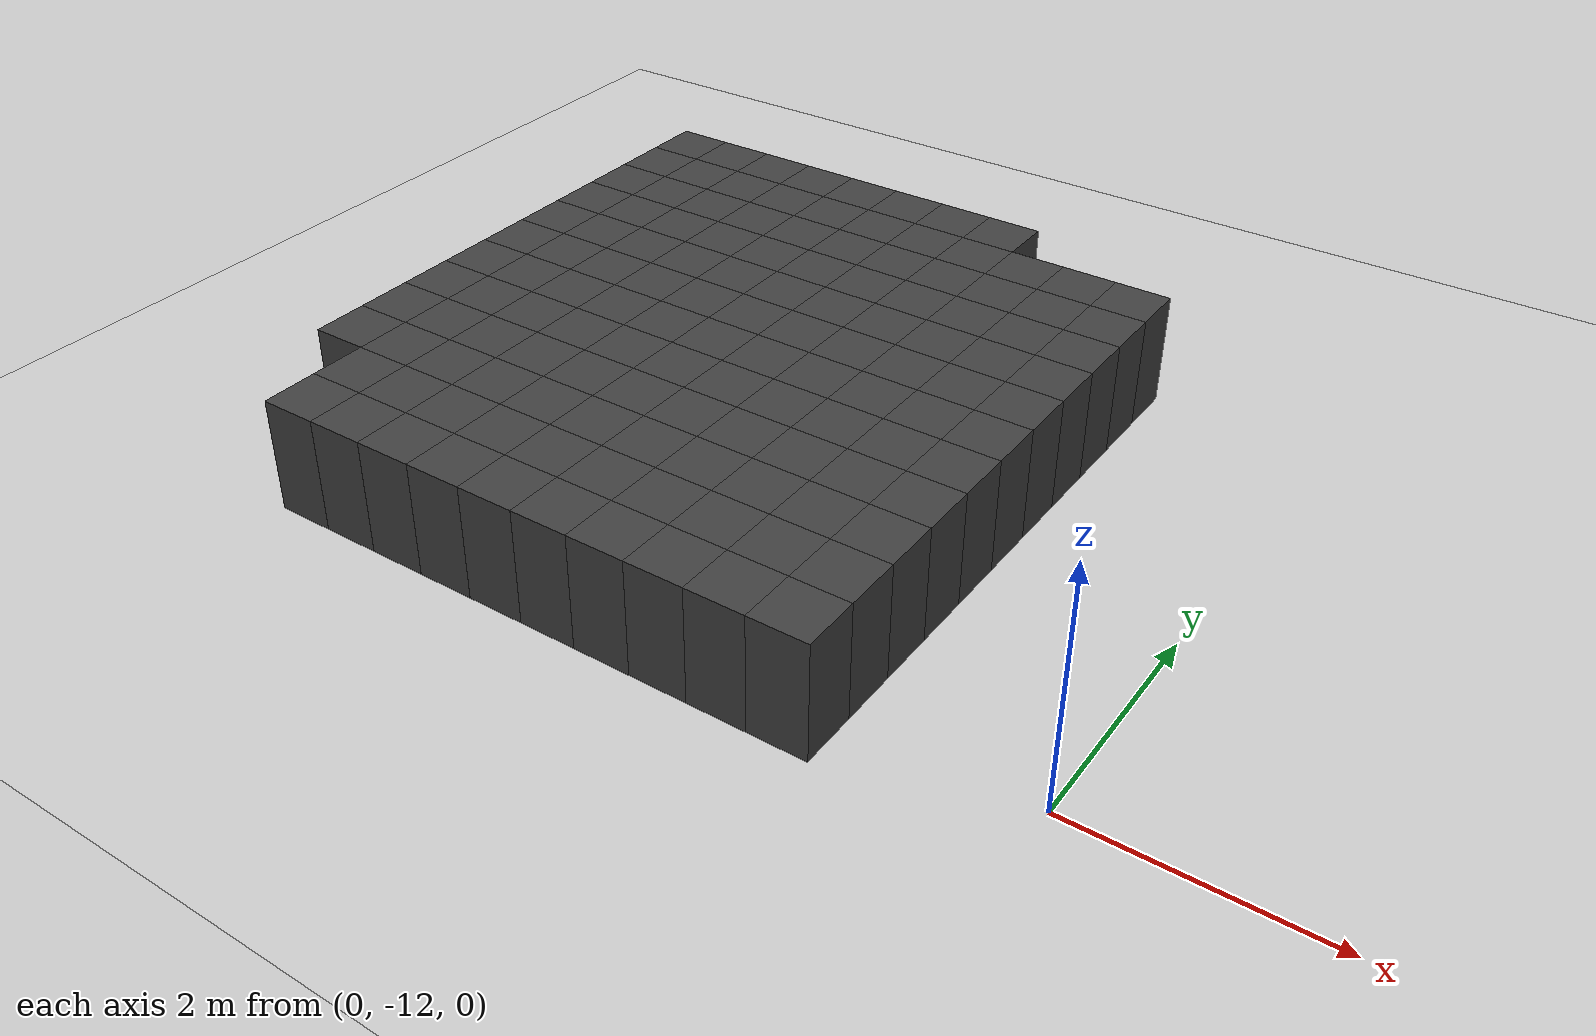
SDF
<sdf version="1.7">
 <world name="map_10777">
  <model name="ground_plane">
   <static>true</static>
   <link name="link">
    <collision name="collision">
     <geometry><plane><normal>0 0 1</normal><size>200 200</size></plane></geometry>
    </collision>
    <visual name="visual">
     <geometry><plane><normal>0 0 1</normal><size>200 200</size></plane></geometry>
     <material><ambient>0.8 0.8 0.8 1</ambient><diffuse>0.8 0.8 0.8 1</diffuse></material>
    </visual>
   </link>
  </model>
  <model name="maze_environment">
   <static>true</static>
   <link name="wall_1661">
    <pose>-6.750 -6.750 0.500 0 0 0</pose>
    <collision name="col"><geometry><box><size>0.5 0.5 1.0</size></box></geometry></collision>
    <visual name="vis">
     <geometry><box><size>0.5 0.5 1.0</size></box></geometry>
     <material><ambient>0.15 0.15 0.15 1</ambient><diffuse>0.25 0.25 0.25 1</diffuse></material>
    </visual>
   </link>
   <link name="wall_1662">
    <pose>-6.250 -6.750 0.500 0 0 0</pose>
    <collision name="col"><geometry><box><size>0.5 0.5 1.0</size></box></geometry></collision>
    <visual name="vis">
     <geometry><box><size>0.5 0.5 1.0</size></box></geometry>
     <material><ambient>0.15 0.15 0.15 1</ambient><diffuse>0.25 0.25 0.25 1</diffuse></material>
    </visual>
   </link>
   <link name="wall_1663">
    <pose>-5.750 -6.750 0.500 0 0 0</pose>
    <collision name="col"><geometry><box><size>0.5 0.5 1.0</size></box></geometry></collision>
    <visual name="vis">
     <geometry><box><size>0.5 0.5 1.0</size></box></geometry>
     <material><ambient>0.15 0.15 0.15 1</ambient><diffuse>0.25 0.25 0.25 1</diffuse></material>
    </visual>
   </link>
   <link name="wall_1664">
    <pose>-5.250 -6.750 0.500 0 0 0</pose>
    <collision name="col"><geometry><box><size>0.5 0.5 1.0</size></box></geometry></collision>
    <visual name="vis">
     <geometry><box><size>0.5 0.5 1.0</size></box></geometry>
     <material><ambient>0.15 0.15 0.15 1</ambient><diffuse>0.25 0.25 0.25 1</diffuse></material>
    </visual>
   </link>
   <link name="wall_1665">
    <pose>-4.750 -6.750 0.500 0 0 0</pose>
    <collision name="col"><geometry><box><size>0.5 0.5 1.0</size></box></geometry></collision>
    <visual name="vis">
     <geometry><box><size>0.5 0.5 1.0</size></box></geometry>
     <material><ambient>0.15 0.15 0.15 1</ambient><diffuse>0.25 0.25 0.25 1</diffuse></material>
    </visual>
   </link>
   <link name="wall_1666">
    <pose>-4.250 -6.750 0.500 0 0 0</pose>
    <collision name="col"><geometry><box><size>0.5 0.5 1.0</size></box></geometry></collision>
    <visual name="vis">
     <geometry><box><size>0.5 0.5 1.0</size></box></geometry>
     <material><ambient>0.15 0.15 0.15 1</ambient><diffuse>0.25 0.25 0.25 1</diffuse></material>
    </visual>
   </link>
   <link name="wall_1667">
    <pose>-3.750 -6.750 0.500 0 0 0</pose>
    <collision name="col"><geometry><box><size>0.5 0.5 1.0</size></box></geometry></collision>
    <visual name="vis">
     <geometry><box><size>0.5 0.5 1.0</size></box></geometry>
     <material><ambient>0.15 0.15 0.15 1</ambient><diffuse>0.25 0.25 0.25 1</diffuse></material>
    </visual>
   </link>
   <link name="wall_1668">
    <pose>-3.250 -6.750 0.500 0 0 0</pose>
    <collision name="col"><geometry><box><size>0.5 0.5 1.0</size></box></geometry></collision>
    <visual name="vis">
     <geometry><box><size>0.5 0.5 1.0</size></box></geometry>
     <material><ambient>0.15 0.15 0.15 1</ambient><diffuse>0.25 0.25 0.25 1</diffuse></material>
    </visual>
   </link>
   <link name="wall_1700">
    <pose>-6.750 -7.250 0.500 0 0 0</pose>
    <collision name="col"><geometry><box><size>0.5 0.5 1.0</size></box></geometry></collision>
    <visual name="vis">
     <geometry><box><size>0.5 0.5 1.0</size></box></geometry>
     <material><ambient>0.15 0.15 0.15 1</ambient><diffuse>0.25 0.25 0.25 1</diffuse></material>
    </visual>
   </link>
   <link name="wall_1701">
    <pose>-6.250 -7.250 0.500 0 0 0</pose>
    <collision name="col"><geometry><box><size>0.5 0.5 1.0</size></box></geometry></collision>
    <visual name="vis">
     <geometry><box><size>0.5 0.5 1.0</size></box></geometry>
     <material><ambient>0.15 0.15 0.15 1</ambient><diffuse>0.25 0.25 0.25 1</diffuse></material>
    </visual>
   </link>
   <link name="wall_1702">
    <pose>-5.750 -7.250 0.500 0 0 0</pose>
    <collision name="col"><geometry><box><size>0.5 0.5 1.0</size></box></geometry></collision>
    <visual name="vis">
     <geometry><box><size>0.5 0.5 1.0</size></box></geometry>
     <material><ambient>0.15 0.15 0.15 1</ambient><diffuse>0.25 0.25 0.25 1</diffuse></material>
    </visual>
   </link>
   <link name="wall_1703">
    <pose>-5.250 -7.250 0.500 0 0 0</pose>
    <collision name="col"><geometry><box><size>0.5 0.5 1.0</size></box></geometry></collision>
    <visual name="vis">
     <geometry><box><size>0.5 0.5 1.0</size></box></geometry>
     <material><ambient>0.15 0.15 0.15 1</ambient><diffuse>0.25 0.25 0.25 1</diffuse></material>
    </visual>
   </link>
   <link name="wall_1704">
    <pose>-4.750 -7.250 0.500 0 0 0</pose>
    <collision name="col"><geometry><box><size>0.5 0.5 1.0</size></box></geometry></collision>
    <visual name="vis">
     <geometry><box><size>0.5 0.5 1.0</size></box></geometry>
     <material><ambient>0.15 0.15 0.15 1</ambient><diffuse>0.25 0.25 0.25 1</diffuse></material>
    </visual>
   </link>
   <link name="wall_1705">
    <pose>-4.250 -7.250 0.500 0 0 0</pose>
    <collision name="col"><geometry><box><size>0.5 0.5 1.0</size></box></geometry></collision>
    <visual name="vis">
     <geometry><box><size>0.5 0.5 1.0</size></box></geometry>
     <material><ambient>0.15 0.15 0.15 1</ambient><diffuse>0.25 0.25 0.25 1</diffuse></material>
    </visual>
   </link>
   <link name="wall_1706">
    <pose>-3.750 -7.250 0.500 0 0 0</pose>
    <collision name="col"><geometry><box><size>0.5 0.5 1.0</size></box></geometry></collision>
    <visual name="vis">
     <geometry><box><size>0.5 0.5 1.0</size></box></geometry>
     <material><ambient>0.15 0.15 0.15 1</ambient><diffuse>0.25 0.25 0.25 1</diffuse></material>
    </visual>
   </link>
   <link name="wall_1707">
    <pose>-3.250 -7.250 0.500 0 0 0</pose>
    <collision name="col"><geometry><box><size>0.5 0.5 1.0</size></box></geometry></collision>
    <visual name="vis">
     <geometry><box><size>0.5 0.5 1.0</size></box></geometry>
     <material><ambient>0.15 0.15 0.15 1</ambient><diffuse>0.25 0.25 0.25 1</diffuse></material>
    </visual>
   </link>
   <link name="wall_1708">
    <pose>-2.750 -7.250 0.500 0 0 0</pose>
    <collision name="col"><geometry><box><size>0.5 0.5 1.0</size></box></geometry></collision>
    <visual name="vis">
     <geometry><box><size>0.5 0.5 1.0</size></box></geometry>
     <material><ambient>0.15 0.15 0.15 1</ambient><diffuse>0.25 0.25 0.25 1</diffuse></material>
    </visual>
   </link>
   <link name="wall_1709">
    <pose>-2.250 -7.250 0.500 0 0 0</pose>
    <collision name="col"><geometry><box><size>0.5 0.5 1.0</size></box></geometry></collision>
    <visual name="vis">
     <geometry><box><size>0.5 0.5 1.0</size></box></geometry>
     <material><ambient>0.15 0.15 0.15 1</ambient><diffuse>0.25 0.25 0.25 1</diffuse></material>
    </visual>
   </link>
   <link name="wall_1710">
    <pose>-1.750 -7.250 0.500 0 0 0</pose>
    <collision name="col"><geometry><box><size>0.5 0.5 1.0</size></box></geometry></collision>
    <visual name="vis">
     <geometry><box><size>0.5 0.5 1.0</size></box></geometry>
     <material><ambient>0.15 0.15 0.15 1</ambient><diffuse>0.25 0.25 0.25 1</diffuse></material>
    </visual>
   </link>
   <link name="wall_1743">
    <pose>-6.750 -7.750 0.500 0 0 0</pose>
    <collision name="col"><geometry><box><size>0.5 0.5 1.0</size></box></geometry></collision>
    <visual name="vis">
     <geometry><box><size>0.5 0.5 1.0</size></box></geometry>
     <material><ambient>0.15 0.15 0.15 1</ambient><diffuse>0.25 0.25 0.25 1</diffuse></material>
    </visual>
   </link>
   <link name="wall_1744">
    <pose>-6.250 -7.750 0.500 0 0 0</pose>
    <collision name="col"><geometry><box><size>0.5 0.5 1.0</size></box></geometry></collision>
    <visual name="vis">
     <geometry><box><size>0.5 0.5 1.0</size></box></geometry>
     <material><ambient>0.15 0.15 0.15 1</ambient><diffuse>0.25 0.25 0.25 1</diffuse></material>
    </visual>
   </link>
   <link name="wall_1745">
    <pose>-5.750 -7.750 0.500 0 0 0</pose>
    <collision name="col"><geometry><box><size>0.5 0.5 1.0</size></box></geometry></collision>
    <visual name="vis">
     <geometry><box><size>0.5 0.5 1.0</size></box></geometry>
     <material><ambient>0.15 0.15 0.15 1</ambient><diffuse>0.25 0.25 0.25 1</diffuse></material>
    </visual>
   </link>
   <link name="wall_1746">
    <pose>-5.250 -7.750 0.500 0 0 0</pose>
    <collision name="col"><geometry><box><size>0.5 0.5 1.0</size></box></geometry></collision>
    <visual name="vis">
     <geometry><box><size>0.5 0.5 1.0</size></box></geometry>
     <material><ambient>0.15 0.15 0.15 1</ambient><diffuse>0.25 0.25 0.25 1</diffuse></material>
    </visual>
   </link>
   <link name="wall_1747">
    <pose>-4.750 -7.750 0.500 0 0 0</pose>
    <collision name="col"><geometry><box><size>0.5 0.5 1.0</size></box></geometry></collision>
    <visual name="vis">
     <geometry><box><size>0.5 0.5 1.0</size></box></geometry>
     <material><ambient>0.15 0.15 0.15 1</ambient><diffuse>0.25 0.25 0.25 1</diffuse></material>
    </visual>
   </link>
   <link name="wall_1748">
    <pose>-4.250 -7.750 0.500 0 0 0</pose>
    <collision name="col"><geometry><box><size>0.5 0.5 1.0</size></box></geometry></collision>
    <visual name="vis">
     <geometry><box><size>0.5 0.5 1.0</size></box></geometry>
     <material><ambient>0.15 0.15 0.15 1</ambient><diffuse>0.25 0.25 0.25 1</diffuse></material>
    </visual>
   </link>
   <link name="wall_1749">
    <pose>-3.750 -7.750 0.500 0 0 0</pose>
    <collision name="col"><geometry><box><size>0.5 0.5 1.0</size></box></geometry></collision>
    <visual name="vis">
     <geometry><box><size>0.5 0.5 1.0</size></box></geometry>
     <material><ambient>0.15 0.15 0.15 1</ambient><diffuse>0.25 0.25 0.25 1</diffuse></material>
    </visual>
   </link>
   <link name="wall_1750">
    <pose>-3.250 -7.750 0.500 0 0 0</pose>
    <collision name="col"><geometry><box><size>0.5 0.5 1.0</size></box></geometry></collision>
    <visual name="vis">
     <geometry><box><size>0.5 0.5 1.0</size></box></geometry>
     <material><ambient>0.15 0.15 0.15 1</ambient><diffuse>0.25 0.25 0.25 1</diffuse></material>
    </visual>
   </link>
   <link name="wall_1751">
    <pose>-2.750 -7.750 0.500 0 0 0</pose>
    <collision name="col"><geometry><box><size>0.5 0.5 1.0</size></box></geometry></collision>
    <visual name="vis">
     <geometry><box><size>0.5 0.5 1.0</size></box></geometry>
     <material><ambient>0.15 0.15 0.15 1</ambient><diffuse>0.25 0.25 0.25 1</diffuse></material>
    </visual>
   </link>
   <link name="wall_1752">
    <pose>-2.250 -7.750 0.500 0 0 0</pose>
    <collision name="col"><geometry><box><size>0.5 0.5 1.0</size></box></geometry></collision>
    <visual name="vis">
     <geometry><box><size>0.5 0.5 1.0</size></box></geometry>
     <material><ambient>0.15 0.15 0.15 1</ambient><diffuse>0.25 0.25 0.25 1</diffuse></material>
    </visual>
   </link>
   <link name="wall_1753">
    <pose>-1.750 -7.750 0.500 0 0 0</pose>
    <collision name="col"><geometry><box><size>0.5 0.5 1.0</size></box></geometry></collision>
    <visual name="vis">
     <geometry><box><size>0.5 0.5 1.0</size></box></geometry>
     <material><ambient>0.15 0.15 0.15 1</ambient><diffuse>0.25 0.25 0.25 1</diffuse></material>
    </visual>
   </link>
   <link name="wall_1785">
    <pose>-6.750 -8.250 0.500 0 0 0</pose>
    <collision name="col"><geometry><box><size>0.5 0.5 1.0</size></box></geometry></collision>
    <visual name="vis">
     <geometry><box><size>0.5 0.5 1.0</size></box></geometry>
     <material><ambient>0.15 0.15 0.15 1</ambient><diffuse>0.25 0.25 0.25 1</diffuse></material>
    </visual>
   </link>
   <link name="wall_1786">
    <pose>-6.250 -8.250 0.500 0 0 0</pose>
    <collision name="col"><geometry><box><size>0.5 0.5 1.0</size></box></geometry></collision>
    <visual name="vis">
     <geometry><box><size>0.5 0.5 1.0</size></box></geometry>
     <material><ambient>0.15 0.15 0.15 1</ambient><diffuse>0.25 0.25 0.25 1</diffuse></material>
    </visual>
   </link>
   <link name="wall_1787">
    <pose>-5.750 -8.250 0.500 0 0 0</pose>
    <collision name="col"><geometry><box><size>0.5 0.5 1.0</size></box></geometry></collision>
    <visual name="vis">
     <geometry><box><size>0.5 0.5 1.0</size></box></geometry>
     <material><ambient>0.15 0.15 0.15 1</ambient><diffuse>0.25 0.25 0.25 1</diffuse></material>
    </visual>
   </link>
   <link name="wall_1788">
    <pose>-5.250 -8.250 0.500 0 0 0</pose>
    <collision name="col"><geometry><box><size>0.5 0.5 1.0</size></box></geometry></collision>
    <visual name="vis">
     <geometry><box><size>0.5 0.5 1.0</size></box></geometry>
     <material><ambient>0.15 0.15 0.15 1</ambient><diffuse>0.25 0.25 0.25 1</diffuse></material>
    </visual>
   </link>
   <link name="wall_1789">
    <pose>-4.750 -8.250 0.500 0 0 0</pose>
    <collision name="col"><geometry><box><size>0.5 0.5 1.0</size></box></geometry></collision>
    <visual name="vis">
     <geometry><box><size>0.5 0.5 1.0</size></box></geometry>
     <material><ambient>0.15 0.15 0.15 1</ambient><diffuse>0.25 0.25 0.25 1</diffuse></material>
    </visual>
   </link>
   <link name="wall_1790">
    <pose>-4.250 -8.250 0.500 0 0 0</pose>
    <collision name="col"><geometry><box><size>0.5 0.5 1.0</size></box></geometry></collision>
    <visual name="vis">
     <geometry><box><size>0.5 0.5 1.0</size></box></geometry>
     <material><ambient>0.15 0.15 0.15 1</ambient><diffuse>0.25 0.25 0.25 1</diffuse></material>
    </visual>
   </link>
   <link name="wall_1791">
    <pose>-3.750 -8.250 0.500 0 0 0</pose>
    <collision name="col"><geometry><box><size>0.5 0.5 1.0</size></box></geometry></collision>
    <visual name="vis">
     <geometry><box><size>0.5 0.5 1.0</size></box></geometry>
     <material><ambient>0.15 0.15 0.15 1</ambient><diffuse>0.25 0.25 0.25 1</diffuse></material>
    </visual>
   </link>
   <link name="wall_1792">
    <pose>-3.250 -8.250 0.500 0 0 0</pose>
    <collision name="col"><geometry><box><size>0.5 0.5 1.0</size></box></geometry></collision>
    <visual name="vis">
     <geometry><box><size>0.5 0.5 1.0</size></box></geometry>
     <material><ambient>0.15 0.15 0.15 1</ambient><diffuse>0.25 0.25 0.25 1</diffuse></material>
    </visual>
   </link>
   <link name="wall_1793">
    <pose>-2.750 -8.250 0.500 0 0 0</pose>
    <collision name="col"><geometry><box><size>0.5 0.5 1.0</size></box></geometry></collision>
    <visual name="vis">
     <geometry><box><size>0.5 0.5 1.0</size></box></geometry>
     <material><ambient>0.15 0.15 0.15 1</ambient><diffuse>0.25 0.25 0.25 1</diffuse></material>
    </visual>
   </link>
   <link name="wall_1794">
    <pose>-2.250 -8.250 0.500 0 0 0</pose>
    <collision name="col"><geometry><box><size>0.5 0.5 1.0</size></box></geometry></collision>
    <visual name="vis">
     <geometry><box><size>0.5 0.5 1.0</size></box></geometry>
     <material><ambient>0.15 0.15 0.15 1</ambient><diffuse>0.25 0.25 0.25 1</diffuse></material>
    </visual>
   </link>
   <link name="wall_1795">
    <pose>-1.750 -8.250 0.500 0 0 0</pose>
    <collision name="col"><geometry><box><size>0.5 0.5 1.0</size></box></geometry></collision>
    <visual name="vis">
     <geometry><box><size>0.5 0.5 1.0</size></box></geometry>
     <material><ambient>0.15 0.15 0.15 1</ambient><diffuse>0.25 0.25 0.25 1</diffuse></material>
    </visual>
   </link>
   <link name="wall_1827">
    <pose>-6.750 -8.750 0.500 0 0 0</pose>
    <collision name="col"><geometry><box><size>0.5 0.5 1.0</size></box></geometry></collision>
    <visual name="vis">
     <geometry><box><size>0.5 0.5 1.0</size></box></geometry>
     <material><ambient>0.15 0.15 0.15 1</ambient><diffuse>0.25 0.25 0.25 1</diffuse></material>
    </visual>
   </link>
   <link name="wall_1828">
    <pose>-6.250 -8.750 0.500 0 0 0</pose>
    <collision name="col"><geometry><box><size>0.5 0.5 1.0</size></box></geometry></collision>
    <visual name="vis">
     <geometry><box><size>0.5 0.5 1.0</size></box></geometry>
     <material><ambient>0.15 0.15 0.15 1</ambient><diffuse>0.25 0.25 0.25 1</diffuse></material>
    </visual>
   </link>
   <link name="wall_1829">
    <pose>-5.750 -8.750 0.500 0 0 0</pose>
    <collision name="col"><geometry><box><size>0.5 0.5 1.0</size></box></geometry></collision>
    <visual name="vis">
     <geometry><box><size>0.5 0.5 1.0</size></box></geometry>
     <material><ambient>0.15 0.15 0.15 1</ambient><diffuse>0.25 0.25 0.25 1</diffuse></material>
    </visual>
   </link>
   <link name="wall_1830">
    <pose>-5.250 -8.750 0.500 0 0 0</pose>
    <collision name="col"><geometry><box><size>0.5 0.5 1.0</size></box></geometry></collision>
    <visual name="vis">
     <geometry><box><size>0.5 0.5 1.0</size></box></geometry>
     <material><ambient>0.15 0.15 0.15 1</ambient><diffuse>0.25 0.25 0.25 1</diffuse></material>
    </visual>
   </link>
   <link name="wall_1831">
    <pose>-4.750 -8.750 0.500 0 0 0</pose>
    <collision name="col"><geometry><box><size>0.5 0.5 1.0</size></box></geometry></collision>
    <visual name="vis">
     <geometry><box><size>0.5 0.5 1.0</size></box></geometry>
     <material><ambient>0.15 0.15 0.15 1</ambient><diffuse>0.25 0.25 0.25 1</diffuse></material>
    </visual>
   </link>
   <link name="wall_1832">
    <pose>-4.250 -8.750 0.500 0 0 0</pose>
    <collision name="col"><geometry><box><size>0.5 0.5 1.0</size></box></geometry></collision>
    <visual name="vis">
     <geometry><box><size>0.5 0.5 1.0</size></box></geometry>
     <material><ambient>0.15 0.15 0.15 1</ambient><diffuse>0.25 0.25 0.25 1</diffuse></material>
    </visual>
   </link>
   <link name="wall_1833">
    <pose>-3.750 -8.750 0.500 0 0 0</pose>
    <collision name="col"><geometry><box><size>0.5 0.5 1.0</size></box></geometry></collision>
    <visual name="vis">
     <geometry><box><size>0.5 0.5 1.0</size></box></geometry>
     <material><ambient>0.15 0.15 0.15 1</ambient><diffuse>0.25 0.25 0.25 1</diffuse></material>
    </visual>
   </link>
   <link name="wall_1834">
    <pose>-3.250 -8.750 0.500 0 0 0</pose>
    <collision name="col"><geometry><box><size>0.5 0.5 1.0</size></box></geometry></collision>
    <visual name="vis">
     <geometry><box><size>0.5 0.5 1.0</size></box></geometry>
     <material><ambient>0.15 0.15 0.15 1</ambient><diffuse>0.25 0.25 0.25 1</diffuse></material>
    </visual>
   </link>
   <link name="wall_1835">
    <pose>-2.750 -8.750 0.500 0 0 0</pose>
    <collision name="col"><geometry><box><size>0.5 0.5 1.0</size></box></geometry></collision>
    <visual name="vis">
     <geometry><box><size>0.5 0.5 1.0</size></box></geometry>
     <material><ambient>0.15 0.15 0.15 1</ambient><diffuse>0.25 0.25 0.25 1</diffuse></material>
    </visual>
   </link>
   <link name="wall_1836">
    <pose>-2.250 -8.750 0.500 0 0 0</pose>
    <collision name="col"><geometry><box><size>0.5 0.5 1.0</size></box></geometry></collision>
    <visual name="vis">
     <geometry><box><size>0.5 0.5 1.0</size></box></geometry>
     <material><ambient>0.15 0.15 0.15 1</ambient><diffuse>0.25 0.25 0.25 1</diffuse></material>
    </visual>
   </link>
   <link name="wall_1837">
    <pose>-1.750 -8.750 0.500 0 0 0</pose>
    <collision name="col"><geometry><box><size>0.5 0.5 1.0</size></box></geometry></collision>
    <visual name="vis">
     <geometry><box><size>0.5 0.5 1.0</size></box></geometry>
     <material><ambient>0.15 0.15 0.15 1</ambient><diffuse>0.25 0.25 0.25 1</diffuse></material>
    </visual>
   </link>
   <link name="wall_1869">
    <pose>-6.750 -9.250 0.500 0 0 0</pose>
    <collision name="col"><geometry><box><size>0.5 0.5 1.0</size></box></geometry></collision>
    <visual name="vis">
     <geometry><box><size>0.5 0.5 1.0</size></box></geometry>
     <material><ambient>0.15 0.15 0.15 1</ambient><diffuse>0.25 0.25 0.25 1</diffuse></material>
    </visual>
   </link>
   <link name="wall_1870">
    <pose>-6.250 -9.250 0.500 0 0 0</pose>
    <collision name="col"><geometry><box><size>0.5 0.5 1.0</size></box></geometry></collision>
    <visual name="vis">
     <geometry><box><size>0.5 0.5 1.0</size></box></geometry>
     <material><ambient>0.15 0.15 0.15 1</ambient><diffuse>0.25 0.25 0.25 1</diffuse></material>
    </visual>
   </link>
   <link name="wall_1871">
    <pose>-5.750 -9.250 0.500 0 0 0</pose>
    <collision name="col"><geometry><box><size>0.5 0.5 1.0</size></box></geometry></collision>
    <visual name="vis">
     <geometry><box><size>0.5 0.5 1.0</size></box></geometry>
     <material><ambient>0.15 0.15 0.15 1</ambient><diffuse>0.25 0.25 0.25 1</diffuse></material>
    </visual>
   </link>
   <link name="wall_1872">
    <pose>-5.250 -9.250 0.500 0 0 0</pose>
    <collision name="col"><geometry><box><size>0.5 0.5 1.0</size></box></geometry></collision>
    <visual name="vis">
     <geometry><box><size>0.5 0.5 1.0</size></box></geometry>
     <material><ambient>0.15 0.15 0.15 1</ambient><diffuse>0.25 0.25 0.25 1</diffuse></material>
    </visual>
   </link>
   <link name="wall_1873">
    <pose>-4.750 -9.250 0.500 0 0 0</pose>
    <collision name="col"><geometry><box><size>0.5 0.5 1.0</size></box></geometry></collision>
    <visual name="vis">
     <geometry><box><size>0.5 0.5 1.0</size></box></geometry>
     <material><ambient>0.15 0.15 0.15 1</ambient><diffuse>0.25 0.25 0.25 1</diffuse></material>
    </visual>
   </link>
   <link name="wall_1874">
    <pose>-4.250 -9.250 0.500 0 0 0</pose>
    <collision name="col"><geometry><box><size>0.5 0.5 1.0</size></box></geometry></collision>
    <visual name="vis">
     <geometry><box><size>0.5 0.5 1.0</size></box></geometry>
     <material><ambient>0.15 0.15 0.15 1</ambient><diffuse>0.25 0.25 0.25 1</diffuse></material>
    </visual>
   </link>
   <link name="wall_1875">
    <pose>-3.750 -9.250 0.500 0 0 0</pose>
    <collision name="col"><geometry><box><size>0.5 0.5 1.0</size></box></geometry></collision>
    <visual name="vis">
     <geometry><box><size>0.5 0.5 1.0</size></box></geometry>
     <material><ambient>0.15 0.15 0.15 1</ambient><diffuse>0.25 0.25 0.25 1</diffuse></material>
    </visual>
   </link>
   <link name="wall_1876">
    <pose>-3.250 -9.250 0.500 0 0 0</pose>
    <collision name="col"><geometry><box><size>0.5 0.5 1.0</size></box></geometry></collision>
    <visual name="vis">
     <geometry><box><size>0.5 0.5 1.0</size></box></geometry>
     <material><ambient>0.15 0.15 0.15 1</ambient><diffuse>0.25 0.25 0.25 1</diffuse></material>
    </visual>
   </link>
   <link name="wall_1877">
    <pose>-2.750 -9.250 0.500 0 0 0</pose>
    <collision name="col"><geometry><box><size>0.5 0.5 1.0</size></box></geometry></collision>
    <visual name="vis">
     <geometry><box><size>0.5 0.5 1.0</size></box></geometry>
     <material><ambient>0.15 0.15 0.15 1</ambient><diffuse>0.25 0.25 0.25 1</diffuse></material>
    </visual>
   </link>
   <link name="wall_1878">
    <pose>-2.250 -9.250 0.500 0 0 0</pose>
    <collision name="col"><geometry><box><size>0.5 0.5 1.0</size></box></geometry></collision>
    <visual name="vis">
     <geometry><box><size>0.5 0.5 1.0</size></box></geometry>
     <material><ambient>0.15 0.15 0.15 1</ambient><diffuse>0.25 0.25 0.25 1</diffuse></material>
    </visual>
   </link>
   <link name="wall_1879">
    <pose>-1.750 -9.250 0.500 0 0 0</pose>
    <collision name="col"><geometry><box><size>0.5 0.5 1.0</size></box></geometry></collision>
    <visual name="vis">
     <geometry><box><size>0.5 0.5 1.0</size></box></geometry>
     <material><ambient>0.15 0.15 0.15 1</ambient><diffuse>0.25 0.25 0.25 1</diffuse></material>
    </visual>
   </link>
   <link name="wall_1911">
    <pose>-6.750 -9.750 0.500 0 0 0</pose>
    <collision name="col"><geometry><box><size>0.5 0.5 1.0</size></box></geometry></collision>
    <visual name="vis">
     <geometry><box><size>0.5 0.5 1.0</size></box></geometry>
     <material><ambient>0.15 0.15 0.15 1</ambient><diffuse>0.25 0.25 0.25 1</diffuse></material>
    </visual>
   </link>
   <link name="wall_1912">
    <pose>-6.250 -9.750 0.500 0 0 0</pose>
    <collision name="col"><geometry><box><size>0.5 0.5 1.0</size></box></geometry></collision>
    <visual name="vis">
     <geometry><box><size>0.5 0.5 1.0</size></box></geometry>
     <material><ambient>0.15 0.15 0.15 1</ambient><diffuse>0.25 0.25 0.25 1</diffuse></material>
    </visual>
   </link>
   <link name="wall_1913">
    <pose>-5.750 -9.750 0.500 0 0 0</pose>
    <collision name="col"><geometry><box><size>0.5 0.5 1.0</size></box></geometry></collision>
    <visual name="vis">
     <geometry><box><size>0.5 0.5 1.0</size></box></geometry>
     <material><ambient>0.15 0.15 0.15 1</ambient><diffuse>0.25 0.25 0.25 1</diffuse></material>
    </visual>
   </link>
   <link name="wall_1914">
    <pose>-5.250 -9.750 0.500 0 0 0</pose>
    <collision name="col"><geometry><box><size>0.5 0.5 1.0</size></box></geometry></collision>
    <visual name="vis">
     <geometry><box><size>0.5 0.5 1.0</size></box></geometry>
     <material><ambient>0.15 0.15 0.15 1</ambient><diffuse>0.25 0.25 0.25 1</diffuse></material>
    </visual>
   </link>
   <link name="wall_1915">
    <pose>-4.750 -9.750 0.500 0 0 0</pose>
    <collision name="col"><geometry><box><size>0.5 0.5 1.0</size></box></geometry></collision>
    <visual name="vis">
     <geometry><box><size>0.5 0.5 1.0</size></box></geometry>
     <material><ambient>0.15 0.15 0.15 1</ambient><diffuse>0.25 0.25 0.25 1</diffuse></material>
    </visual>
   </link>
   <link name="wall_1916">
    <pose>-4.250 -9.750 0.500 0 0 0</pose>
    <collision name="col"><geometry><box><size>0.5 0.5 1.0</size></box></geometry></collision>
    <visual name="vis">
     <geometry><box><size>0.5 0.5 1.0</size></box></geometry>
     <material><ambient>0.15 0.15 0.15 1</ambient><diffuse>0.25 0.25 0.25 1</diffuse></material>
    </visual>
   </link>
   <link name="wall_1917">
    <pose>-3.750 -9.750 0.500 0 0 0</pose>
    <collision name="col"><geometry><box><size>0.5 0.5 1.0</size></box></geometry></collision>
    <visual name="vis">
     <geometry><box><size>0.5 0.5 1.0</size></box></geometry>
     <material><ambient>0.15 0.15 0.15 1</ambient><diffuse>0.25 0.25 0.25 1</diffuse></material>
    </visual>
   </link>
   <link name="wall_1918">
    <pose>-3.250 -9.750 0.500 0 0 0</pose>
    <collision name="col"><geometry><box><size>0.5 0.5 1.0</size></box></geometry></collision>
    <visual name="vis">
     <geometry><box><size>0.5 0.5 1.0</size></box></geometry>
     <material><ambient>0.15 0.15 0.15 1</ambient><diffuse>0.25 0.25 0.25 1</diffuse></material>
    </visual>
   </link>
   <link name="wall_1919">
    <pose>-2.750 -9.750 0.500 0 0 0</pose>
    <collision name="col"><geometry><box><size>0.5 0.5 1.0</size></box></geometry></collision>
    <visual name="vis">
     <geometry><box><size>0.5 0.5 1.0</size></box></geometry>
     <material><ambient>0.15 0.15 0.15 1</ambient><diffuse>0.25 0.25 0.25 1</diffuse></material>
    </visual>
   </link>
   <link name="wall_1920">
    <pose>-2.250 -9.750 0.500 0 0 0</pose>
    <collision name="col"><geometry><box><size>0.5 0.5 1.0</size></box></geometry></collision>
    <visual name="vis">
     <geometry><box><size>0.5 0.5 1.0</size></box></geometry>
     <material><ambient>0.15 0.15 0.15 1</ambient><diffuse>0.25 0.25 0.25 1</diffuse></material>
    </visual>
   </link>
   <link name="wall_1921">
    <pose>-1.750 -9.750 0.500 0 0 0</pose>
    <collision name="col"><geometry><box><size>0.5 0.5 1.0</size></box></geometry></collision>
    <visual name="vis">
     <geometry><box><size>0.5 0.5 1.0</size></box></geometry>
     <material><ambient>0.15 0.15 0.15 1</ambient><diffuse>0.25 0.25 0.25 1</diffuse></material>
    </visual>
   </link>
   <link name="wall_1952">
    <pose>-6.750 -10.250 0.500 0 0 0</pose>
    <collision name="col"><geometry><box><size>0.5 0.5 1.0</size></box></geometry></collision>
    <visual name="vis">
     <geometry><box><size>0.5 0.5 1.0</size></box></geometry>
     <material><ambient>0.15 0.15 0.15 1</ambient><diffuse>0.25 0.25 0.25 1</diffuse></material>
    </visual>
   </link>
   <link name="wall_1953">
    <pose>-6.250 -10.250 0.500 0 0 0</pose>
    <collision name="col"><geometry><box><size>0.5 0.5 1.0</size></box></geometry></collision>
    <visual name="vis">
     <geometry><box><size>0.5 0.5 1.0</size></box></geometry>
     <material><ambient>0.15 0.15 0.15 1</ambient><diffuse>0.25 0.25 0.25 1</diffuse></material>
    </visual>
   </link>
   <link name="wall_1954">
    <pose>-5.750 -10.250 0.500 0 0 0</pose>
    <collision name="col"><geometry><box><size>0.5 0.5 1.0</size></box></geometry></collision>
    <visual name="vis">
     <geometry><box><size>0.5 0.5 1.0</size></box></geometry>
     <material><ambient>0.15 0.15 0.15 1</ambient><diffuse>0.25 0.25 0.25 1</diffuse></material>
    </visual>
   </link>
   <link name="wall_1955">
    <pose>-5.250 -10.250 0.500 0 0 0</pose>
    <collision name="col"><geometry><box><size>0.5 0.5 1.0</size></box></geometry></collision>
    <visual name="vis">
     <geometry><box><size>0.5 0.5 1.0</size></box></geometry>
     <material><ambient>0.15 0.15 0.15 1</ambient><diffuse>0.25 0.25 0.25 1</diffuse></material>
    </visual>
   </link>
   <link name="wall_1956">
    <pose>-4.750 -10.250 0.500 0 0 0</pose>
    <collision name="col"><geometry><box><size>0.5 0.5 1.0</size></box></geometry></collision>
    <visual name="vis">
     <geometry><box><size>0.5 0.5 1.0</size></box></geometry>
     <material><ambient>0.15 0.15 0.15 1</ambient><diffuse>0.25 0.25 0.25 1</diffuse></material>
    </visual>
   </link>
   <link name="wall_1957">
    <pose>-4.250 -10.250 0.500 0 0 0</pose>
    <collision name="col"><geometry><box><size>0.5 0.5 1.0</size></box></geometry></collision>
    <visual name="vis">
     <geometry><box><size>0.5 0.5 1.0</size></box></geometry>
     <material><ambient>0.15 0.15 0.15 1</ambient><diffuse>0.25 0.25 0.25 1</diffuse></material>
    </visual>
   </link>
   <link name="wall_1958">
    <pose>-3.750 -10.250 0.500 0 0 0</pose>
    <collision name="col"><geometry><box><size>0.5 0.5 1.0</size></box></geometry></collision>
    <visual name="vis">
     <geometry><box><size>0.5 0.5 1.0</size></box></geometry>
     <material><ambient>0.15 0.15 0.15 1</ambient><diffuse>0.25 0.25 0.25 1</diffuse></material>
    </visual>
   </link>
   <link name="wall_1959">
    <pose>-3.250 -10.250 0.500 0 0 0</pose>
    <collision name="col"><geometry><box><size>0.5 0.5 1.0</size></box></geometry></collision>
    <visual name="vis">
     <geometry><box><size>0.5 0.5 1.0</size></box></geometry>
     <material><ambient>0.15 0.15 0.15 1</ambient><diffuse>0.25 0.25 0.25 1</diffuse></material>
    </visual>
   </link>
   <link name="wall_1960">
    <pose>-2.750 -10.250 0.500 0 0 0</pose>
    <collision name="col"><geometry><box><size>0.5 0.5 1.0</size></box></geometry></collision>
    <visual name="vis">
     <geometry><box><size>0.5 0.5 1.0</size></box></geometry>
     <material><ambient>0.15 0.15 0.15 1</ambient><diffuse>0.25 0.25 0.25 1</diffuse></material>
    </visual>
   </link>
   <link name="wall_1961">
    <pose>-2.250 -10.250 0.500 0 0 0</pose>
    <collision name="col"><geometry><box><size>0.5 0.5 1.0</size></box></geometry></collision>
    <visual name="vis">
     <geometry><box><size>0.5 0.5 1.0</size></box></geometry>
     <material><ambient>0.15 0.15 0.15 1</ambient><diffuse>0.25 0.25 0.25 1</diffuse></material>
    </visual>
   </link>
   <link name="wall_1962">
    <pose>-1.750 -10.250 0.500 0 0 0</pose>
    <collision name="col"><geometry><box><size>0.5 0.5 1.0</size></box></geometry></collision>
    <visual name="vis">
     <geometry><box><size>0.5 0.5 1.0</size></box></geometry>
     <material><ambient>0.15 0.15 0.15 1</ambient><diffuse>0.25 0.25 0.25 1</diffuse></material>
    </visual>
   </link>
   <link name="wall_1995">
    <pose>-6.750 -10.750 0.500 0 0 0</pose>
    <collision name="col"><geometry><box><size>0.5 0.5 1.0</size></box></geometry></collision>
    <visual name="vis">
     <geometry><box><size>0.5 0.5 1.0</size></box></geometry>
     <material><ambient>0.15 0.15 0.15 1</ambient><diffuse>0.25 0.25 0.25 1</diffuse></material>
    </visual>
   </link>
   <link name="wall_1996">
    <pose>-6.250 -10.750 0.500 0 0 0</pose>
    <collision name="col"><geometry><box><size>0.5 0.5 1.0</size></box></geometry></collision>
    <visual name="vis">
     <geometry><box><size>0.5 0.5 1.0</size></box></geometry>
     <material><ambient>0.15 0.15 0.15 1</ambient><diffuse>0.25 0.25 0.25 1</diffuse></material>
    </visual>
   </link>
   <link name="wall_1997">
    <pose>-5.750 -10.750 0.500 0 0 0</pose>
    <collision name="col"><geometry><box><size>0.5 0.5 1.0</size></box></geometry></collision>
    <visual name="vis">
     <geometry><box><size>0.5 0.5 1.0</size></box></geometry>
     <material><ambient>0.15 0.15 0.15 1</ambient><diffuse>0.25 0.25 0.25 1</diffuse></material>
    </visual>
   </link>
   <link name="wall_1998">
    <pose>-5.250 -10.750 0.500 0 0 0</pose>
    <collision name="col"><geometry><box><size>0.5 0.5 1.0</size></box></geometry></collision>
    <visual name="vis">
     <geometry><box><size>0.5 0.5 1.0</size></box></geometry>
     <material><ambient>0.15 0.15 0.15 1</ambient><diffuse>0.25 0.25 0.25 1</diffuse></material>
    </visual>
   </link>
   <link name="wall_1999">
    <pose>-4.750 -10.750 0.500 0 0 0</pose>
    <collision name="col"><geometry><box><size>0.5 0.5 1.0</size></box></geometry></collision>
    <visual name="vis">
     <geometry><box><size>0.5 0.5 1.0</size></box></geometry>
     <material><ambient>0.15 0.15 0.15 1</ambient><diffuse>0.25 0.25 0.25 1</diffuse></material>
    </visual>
   </link>
   <link name="wall_2000">
    <pose>-4.250 -10.750 0.500 0 0 0</pose>
    <collision name="col"><geometry><box><size>0.5 0.5 1.0</size></box></geometry></collision>
    <visual name="vis">
     <geometry><box><size>0.5 0.5 1.0</size></box></geometry>
     <material><ambient>0.15 0.15 0.15 1</ambient><diffuse>0.25 0.25 0.25 1</diffuse></material>
    </visual>
   </link>
   <link name="wall_2001">
    <pose>-3.750 -10.750 0.500 0 0 0</pose>
    <collision name="col"><geometry><box><size>0.5 0.5 1.0</size></box></geometry></collision>
    <visual name="vis">
     <geometry><box><size>0.5 0.5 1.0</size></box></geometry>
     <material><ambient>0.15 0.15 0.15 1</ambient><diffuse>0.25 0.25 0.25 1</diffuse></material>
    </visual>
   </link>
   <link name="wall_2002">
    <pose>-3.250 -10.750 0.500 0 0 0</pose>
    <collision name="col"><geometry><box><size>0.5 0.5 1.0</size></box></geometry></collision>
    <visual name="vis">
     <geometry><box><size>0.5 0.5 1.0</size></box></geometry>
     <material><ambient>0.15 0.15 0.15 1</ambient><diffuse>0.25 0.25 0.25 1</diffuse></material>
    </visual>
   </link>
   <link name="wall_2003">
    <pose>-2.750 -10.750 0.500 0 0 0</pose>
    <collision name="col"><geometry><box><size>0.5 0.5 1.0</size></box></geometry></collision>
    <visual name="vis">
     <geometry><box><size>0.5 0.5 1.0</size></box></geometry>
     <material><ambient>0.15 0.15 0.15 1</ambient><diffuse>0.25 0.25 0.25 1</diffuse></material>
    </visual>
   </link>
   <link name="wall_2004">
    <pose>-2.250 -10.750 0.500 0 0 0</pose>
    <collision name="col"><geometry><box><size>0.5 0.5 1.0</size></box></geometry></collision>
    <visual name="vis">
     <geometry><box><size>0.5 0.5 1.0</size></box></geometry>
     <material><ambient>0.15 0.15 0.15 1</ambient><diffuse>0.25 0.25 0.25 1</diffuse></material>
    </visual>
   </link>
   <link name="wall_2005">
    <pose>-1.750 -10.750 0.500 0 0 0</pose>
    <collision name="col"><geometry><box><size>0.5 0.5 1.0</size></box></geometry></collision>
    <visual name="vis">
     <geometry><box><size>0.5 0.5 1.0</size></box></geometry>
     <material><ambient>0.15 0.15 0.15 1</ambient><diffuse>0.25 0.25 0.25 1</diffuse></material>
    </visual>
   </link>
   <link name="wall_2035">
    <pose>-6.750 -11.250 0.500 0 0 0</pose>
    <collision name="col"><geometry><box><size>0.5 0.5 1.0</size></box></geometry></collision>
    <visual name="vis">
     <geometry><box><size>0.5 0.5 1.0</size></box></geometry>
     <material><ambient>0.15 0.15 0.15 1</ambient><diffuse>0.25 0.25 0.25 1</diffuse></material>
    </visual>
   </link>
   <link name="wall_2036">
    <pose>-6.250 -11.250 0.500 0 0 0</pose>
    <collision name="col"><geometry><box><size>0.5 0.5 1.0</size></box></geometry></collision>
    <visual name="vis">
     <geometry><box><size>0.5 0.5 1.0</size></box></geometry>
     <material><ambient>0.15 0.15 0.15 1</ambient><diffuse>0.25 0.25 0.25 1</diffuse></material>
    </visual>
   </link>
   <link name="wall_2037">
    <pose>-5.750 -11.250 0.500 0 0 0</pose>
    <collision name="col"><geometry><box><size>0.5 0.5 1.0</size></box></geometry></collision>
    <visual name="vis">
     <geometry><box><size>0.5 0.5 1.0</size></box></geometry>
     <material><ambient>0.15 0.15 0.15 1</ambient><diffuse>0.25 0.25 0.25 1</diffuse></material>
    </visual>
   </link>
   <link name="wall_2038">
    <pose>-5.250 -11.250 0.500 0 0 0</pose>
    <collision name="col"><geometry><box><size>0.5 0.5 1.0</size></box></geometry></collision>
    <visual name="vis">
     <geometry><box><size>0.5 0.5 1.0</size></box></geometry>
     <material><ambient>0.15 0.15 0.15 1</ambient><diffuse>0.25 0.25 0.25 1</diffuse></material>
    </visual>
   </link>
   <link name="wall_2039">
    <pose>-4.750 -11.250 0.500 0 0 0</pose>
    <collision name="col"><geometry><box><size>0.5 0.5 1.0</size></box></geometry></collision>
    <visual name="vis">
     <geometry><box><size>0.5 0.5 1.0</size></box></geometry>
     <material><ambient>0.15 0.15 0.15 1</ambient><diffuse>0.25 0.25 0.25 1</diffuse></material>
    </visual>
   </link>
   <link name="wall_2040">
    <pose>-4.250 -11.250 0.500 0 0 0</pose>
    <collision name="col"><geometry><box><size>0.5 0.5 1.0</size></box></geometry></collision>
    <visual name="vis">
     <geometry><box><size>0.5 0.5 1.0</size></box></geometry>
     <material><ambient>0.15 0.15 0.15 1</ambient><diffuse>0.25 0.25 0.25 1</diffuse></material>
    </visual>
   </link>
   <link name="wall_2041">
    <pose>-3.750 -11.250 0.500 0 0 0</pose>
    <collision name="col"><geometry><box><size>0.5 0.5 1.0</size></box></geometry></collision>
    <visual name="vis">
     <geometry><box><size>0.5 0.5 1.0</size></box></geometry>
     <material><ambient>0.15 0.15 0.15 1</ambient><diffuse>0.25 0.25 0.25 1</diffuse></material>
    </visual>
   </link>
   <link name="wall_2042">
    <pose>-3.250 -11.250 0.500 0 0 0</pose>
    <collision name="col"><geometry><box><size>0.5 0.5 1.0</size></box></geometry></collision>
    <visual name="vis">
     <geometry><box><size>0.5 0.5 1.0</size></box></geometry>
     <material><ambient>0.15 0.15 0.15 1</ambient><diffuse>0.25 0.25 0.25 1</diffuse></material>
    </visual>
   </link>
   <link name="wall_2043">
    <pose>-2.750 -11.250 0.500 0 0 0</pose>
    <collision name="col"><geometry><box><size>0.5 0.5 1.0</size></box></geometry></collision>
    <visual name="vis">
     <geometry><box><size>0.5 0.5 1.0</size></box></geometry>
     <material><ambient>0.15 0.15 0.15 1</ambient><diffuse>0.25 0.25 0.25 1</diffuse></material>
    </visual>
   </link>
   <link name="wall_2044">
    <pose>-2.250 -11.250 0.500 0 0 0</pose>
    <collision name="col"><geometry><box><size>0.5 0.5 1.0</size></box></geometry></collision>
    <visual name="vis">
     <geometry><box><size>0.5 0.5 1.0</size></box></geometry>
     <material><ambient>0.15 0.15 0.15 1</ambient><diffuse>0.25 0.25 0.25 1</diffuse></material>
    </visual>
   </link>
   <link name="wall_2045">
    <pose>-1.750 -11.250 0.500 0 0 0</pose>
    <collision name="col"><geometry><box><size>0.5 0.5 1.0</size></box></geometry></collision>
    <visual name="vis">
     <geometry><box><size>0.5 0.5 1.0</size></box></geometry>
     <material><ambient>0.15 0.15 0.15 1</ambient><diffuse>0.25 0.25 0.25 1</diffuse></material>
    </visual>
   </link>
   <link name="wall_2072">
    <pose>-6.250 -11.750 0.500 0 0 0</pose>
    <collision name="col"><geometry><box><size>0.5 0.5 1.0</size></box></geometry></collision>
    <visual name="vis">
     <geometry><box><size>0.5 0.5 1.0</size></box></geometry>
     <material><ambient>0.15 0.15 0.15 1</ambient><diffuse>0.25 0.25 0.25 1</diffuse></material>
    </visual>
   </link>
   <link name="wall_2073">
    <pose>-5.750 -11.750 0.500 0 0 0</pose>
    <collision name="col"><geometry><box><size>0.5 0.5 1.0</size></box></geometry></collision>
    <visual name="vis">
     <geometry><box><size>0.5 0.5 1.0</size></box></geometry>
     <material><ambient>0.15 0.15 0.15 1</ambient><diffuse>0.25 0.25 0.25 1</diffuse></material>
    </visual>
   </link>
   <link name="wall_2074">
    <pose>-5.250 -11.750 0.500 0 0 0</pose>
    <collision name="col"><geometry><box><size>0.5 0.5 1.0</size></box></geometry></collision>
    <visual name="vis">
     <geometry><box><size>0.5 0.5 1.0</size></box></geometry>
     <material><ambient>0.15 0.15 0.15 1</ambient><diffuse>0.25 0.25 0.25 1</diffuse></material>
    </visual>
   </link>
   <link name="wall_2075">
    <pose>-4.750 -11.750 0.500 0 0 0</pose>
    <collision name="col"><geometry><box><size>0.5 0.5 1.0</size></box></geometry></collision>
    <visual name="vis">
     <geometry><box><size>0.5 0.5 1.0</size></box></geometry>
     <material><ambient>0.15 0.15 0.15 1</ambient><diffuse>0.25 0.25 0.25 1</diffuse></material>
    </visual>
   </link>
   <link name="wall_2076">
    <pose>-4.250 -11.750 0.500 0 0 0</pose>
    <collision name="col"><geometry><box><size>0.5 0.5 1.0</size></box></geometry></collision>
    <visual name="vis">
     <geometry><box><size>0.5 0.5 1.0</size></box></geometry>
     <material><ambient>0.15 0.15 0.15 1</ambient><diffuse>0.25 0.25 0.25 1</diffuse></material>
    </visual>
   </link>
   <link name="wall_2077">
    <pose>-3.750 -11.750 0.500 0 0 0</pose>
    <collision name="col"><geometry><box><size>0.5 0.5 1.0</size></box></geometry></collision>
    <visual name="vis">
     <geometry><box><size>0.5 0.5 1.0</size></box></geometry>
     <material><ambient>0.15 0.15 0.15 1</ambient><diffuse>0.25 0.25 0.25 1</diffuse></material>
    </visual>
   </link>
   <link name="wall_2078">
    <pose>-3.250 -11.750 0.500 0 0 0</pose>
    <collision name="col"><geometry><box><size>0.5 0.5 1.0</size></box></geometry></collision>
    <visual name="vis">
     <geometry><box><size>0.5 0.5 1.0</size></box></geometry>
     <material><ambient>0.15 0.15 0.15 1</ambient><diffuse>0.25 0.25 0.25 1</diffuse></material>
    </visual>
   </link>
   <link name="wall_2079">
    <pose>-2.750 -11.750 0.500 0 0 0</pose>
    <collision name="col"><geometry><box><size>0.5 0.5 1.0</size></box></geometry></collision>
    <visual name="vis">
     <geometry><box><size>0.5 0.5 1.0</size></box></geometry>
     <material><ambient>0.15 0.15 0.15 1</ambient><diffuse>0.25 0.25 0.25 1</diffuse></material>
    </visual>
   </link>
   <link name="wall_2080">
    <pose>-2.250 -11.750 0.500 0 0 0</pose>
    <collision name="col"><geometry><box><size>0.5 0.5 1.0</size></box></geometry></collision>
    <visual name="vis">
     <geometry><box><size>0.5 0.5 1.0</size></box></geometry>
     <material><ambient>0.15 0.15 0.15 1</ambient><diffuse>0.25 0.25 0.25 1</diffuse></material>
    </visual>
   </link>
   <link name="wall_2081">
    <pose>-1.750 -11.750 0.500 0 0 0</pose>
    <collision name="col"><geometry><box><size>0.5 0.5 1.0</size></box></geometry></collision>
    <visual name="vis">
     <geometry><box><size>0.5 0.5 1.0</size></box></geometry>
     <material><ambient>0.15 0.15 0.15 1</ambient><diffuse>0.25 0.25 0.25 1</diffuse></material>
    </visual>
   </link>
   <link name="wall_2119">
    <pose>-6.250 -12.250 0.500 0 0 0</pose>
    <collision name="col"><geometry><box><size>0.5 0.5 1.0</size></box></geometry></collision>
    <visual name="vis">
     <geometry><box><size>0.5 0.5 1.0</size></box></geometry>
     <material><ambient>0.15 0.15 0.15 1</ambient><diffuse>0.25 0.25 0.25 1</diffuse></material>
    </visual>
   </link>
   <link name="wall_2120">
    <pose>-5.750 -12.250 0.500 0 0 0</pose>
    <collision name="col"><geometry><box><size>0.5 0.5 1.0</size></box></geometry></collision>
    <visual name="vis">
     <geometry><box><size>0.5 0.5 1.0</size></box></geometry>
     <material><ambient>0.15 0.15 0.15 1</ambient><diffuse>0.25 0.25 0.25 1</diffuse></material>
    </visual>
   </link>
   <link name="wall_2121">
    <pose>-5.250 -12.250 0.500 0 0 0</pose>
    <collision name="col"><geometry><box><size>0.5 0.5 1.0</size></box></geometry></collision>
    <visual name="vis">
     <geometry><box><size>0.5 0.5 1.0</size></box></geometry>
     <material><ambient>0.15 0.15 0.15 1</ambient><diffuse>0.25 0.25 0.25 1</diffuse></material>
    </visual>
   </link>
   <link name="wall_2122">
    <pose>-4.750 -12.250 0.500 0 0 0</pose>
    <collision name="col"><geometry><box><size>0.5 0.5 1.0</size></box></geometry></collision>
    <visual name="vis">
     <geometry><box><size>0.5 0.5 1.0</size></box></geometry>
     <material><ambient>0.15 0.15 0.15 1</ambient><diffuse>0.25 0.25 0.25 1</diffuse></material>
    </visual>
   </link>
   <link name="wall_2123">
    <pose>-4.250 -12.250 0.500 0 0 0</pose>
    <collision name="col"><geometry><box><size>0.5 0.5 1.0</size></box></geometry></collision>
    <visual name="vis">
     <geometry><box><size>0.5 0.5 1.0</size></box></geometry>
     <material><ambient>0.15 0.15 0.15 1</ambient><diffuse>0.25 0.25 0.25 1</diffuse></material>
    </visual>
   </link>
   <link name="wall_2124">
    <pose>-3.750 -12.250 0.500 0 0 0</pose>
    <collision name="col"><geometry><box><size>0.5 0.5 1.0</size></box></geometry></collision>
    <visual name="vis">
     <geometry><box><size>0.5 0.5 1.0</size></box></geometry>
     <material><ambient>0.15 0.15 0.15 1</ambient><diffuse>0.25 0.25 0.25 1</diffuse></material>
    </visual>
   </link>
   <link name="wall_2125">
    <pose>-3.250 -12.250 0.500 0 0 0</pose>
    <collision name="col"><geometry><box><size>0.5 0.5 1.0</size></box></geometry></collision>
    <visual name="vis">
     <geometry><box><size>0.5 0.5 1.0</size></box></geometry>
     <material><ambient>0.15 0.15 0.15 1</ambient><diffuse>0.25 0.25 0.25 1</diffuse></material>
    </visual>
   </link>
   <link name="wall_2126">
    <pose>-2.750 -12.250 0.500 0 0 0</pose>
    <collision name="col"><geometry><box><size>0.5 0.5 1.0</size></box></geometry></collision>
    <visual name="vis">
     <geometry><box><size>0.5 0.5 1.0</size></box></geometry>
     <material><ambient>0.15 0.15 0.15 1</ambient><diffuse>0.25 0.25 0.25 1</diffuse></material>
    </visual>
   </link>
   <link name="wall_2127">
    <pose>-2.250 -12.250 0.500 0 0 0</pose>
    <collision name="col"><geometry><box><size>0.5 0.5 1.0</size></box></geometry></collision>
    <visual name="vis">
     <geometry><box><size>0.5 0.5 1.0</size></box></geometry>
     <material><ambient>0.15 0.15 0.15 1</ambient><diffuse>0.25 0.25 0.25 1</diffuse></material>
    </visual>
   </link>
   <link name="wall_2128">
    <pose>-1.750 -12.250 0.500 0 0 0</pose>
    <collision name="col"><geometry><box><size>0.5 0.5 1.0</size></box></geometry></collision>
    <visual name="vis">
     <geometry><box><size>0.5 0.5 1.0</size></box></geometry>
     <material><ambient>0.15 0.15 0.15 1</ambient><diffuse>0.25 0.25 0.25 1</diffuse></material>
    </visual>
   </link>
  </model>
 </world>
</sdf>
